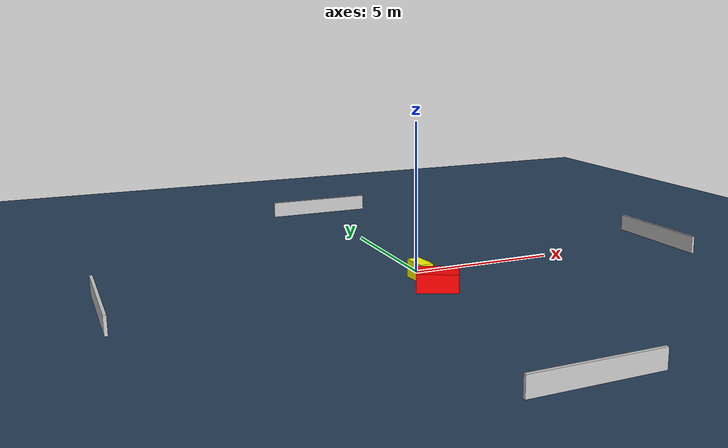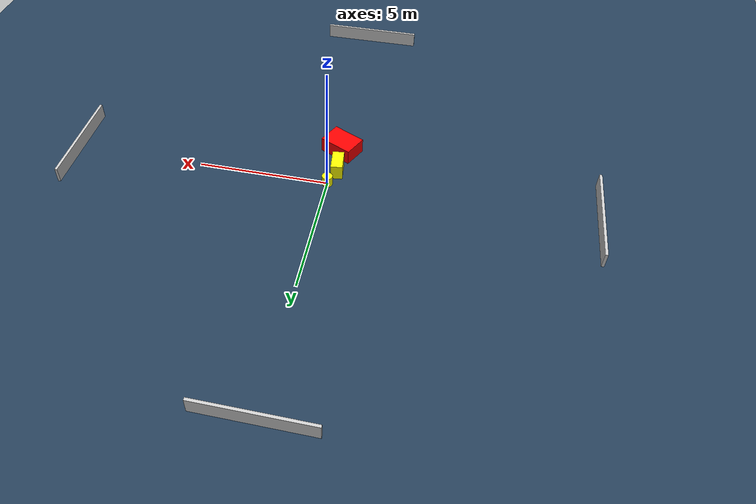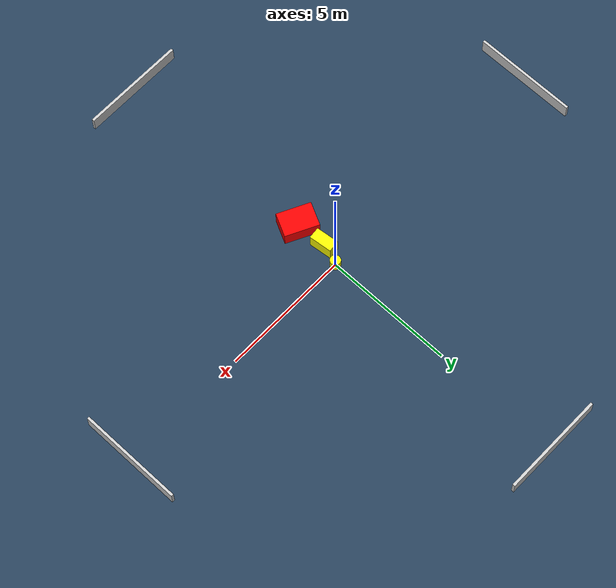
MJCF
<?xml version="1.0" ?>
<mujoco model="generated_environment">
  <option timestep="0.01" integrator="RK4" cone="elliptic"/>
  <default>
    <geom density="1"/>
  </default>
  <asset>
    <texture builtin="gradient" height="3072" name="skybox" rgb1="0.3 0.5 0.7" rgb2="0 0 0" type="skybox" width="512"/>
    <texture builtin="checker" height="300" name="groundplane" rgb1="0.2 0.3 0.4" rgb2="0.1 0.2 0.3" type="2d" width="300"/>
    <material name="groundplane" reflectance="0.2" texrepeat="5 5" texture="groundplane"/>
  </asset>
  <worldbody>
    <light dir="0 0 -1" directional="true" pos="0 0 1.5"/>
    <geom condim="3" friction="0.5 0.005 0.001" material="groundplane" name="floor" pos="0 0 0" size="0 0 0.05" type="plane"/>
    <body name="walls">
      <geom name="wall_1" condim="4" pos="-10.0 0.0 0.3" rgba="0.800000011920929 0.800000011920929 0.800000011920929 1.0" size="0.05 2.0 0.3" type="box"/>
      <geom name="wall_2" condim="4" pos="10.0 0.0 0.3" rgba="0.800000011920929 0.800000011920929 0.800000011920929 1.0" size="0.05 2.0 0.3" type="box"/>
      <geom name="wall_3" condim="4" pos="0.0 -10.0 0.3" rgba="0.800000011920929 0.800000011920929 0.800000011920929 1.0" size="2.0 0.05 0.3" type="box"/>
      <geom name="wall_4" condim="4" pos="0.0 10.0 0.3" rgba="0.800000011920929 0.800000011920929 0.800000011920929 1.0" size="2.0 0.05 0.3" type="box"/>
    </body>
    <body name="robot">
      <joint name="joint_x" type="slide" pos="0 0 0" axis="1 0 0"/>
      <joint name="joint_y" type="slide" pos="0 0 0" axis="0 1 0"/>
      <geom name="robot" type="cylinder" pos="0.0 0.0 0.2" size="0.2 0.2 0.0" mass="5.0" friction="1.0 0.005 0.0001" condim="4" rgba="1.0 1.0 0.0 1.0"/>
    </body>
    <body name="obstacle_1_movable">
      <geom name="obstacle_1_movable" condim="4" pos="-0.23298941786978067 -0.7709731714035624 0.3" euler="0 0 96.23123318610595" friction="0.0 0.005 0.001" rgba="1.0 1.0 0.0 1.0" size="0.4393891773353574 0.22309429492597846 0.3" type="box" mass="0.1"/>
      <joint type="free"/>
    </body>
    <body name="obstacle_2_static">
      <geom name="obstacle_2_static" condim="4" pos="-0.17725572899973402 -1.9701657848349532 0.3" euler="0 0 333.48871359170556" friction="0.0 0.005 0.001" rgba="1.0 0.0 0.0 1.0" size="0.6578414684646854 0.4666441116849836 0.3" type="box"/>
    </body>
  </worldbody>
  <actuator>
    <motor name="actuator_x" joint="joint_x" gear="1" ctrlrange="-1 1"/>
    <motor name="actuator_y" joint="joint_y" gear="1" ctrlrange="-1 1"/>
  </actuator>
</mujoco>
